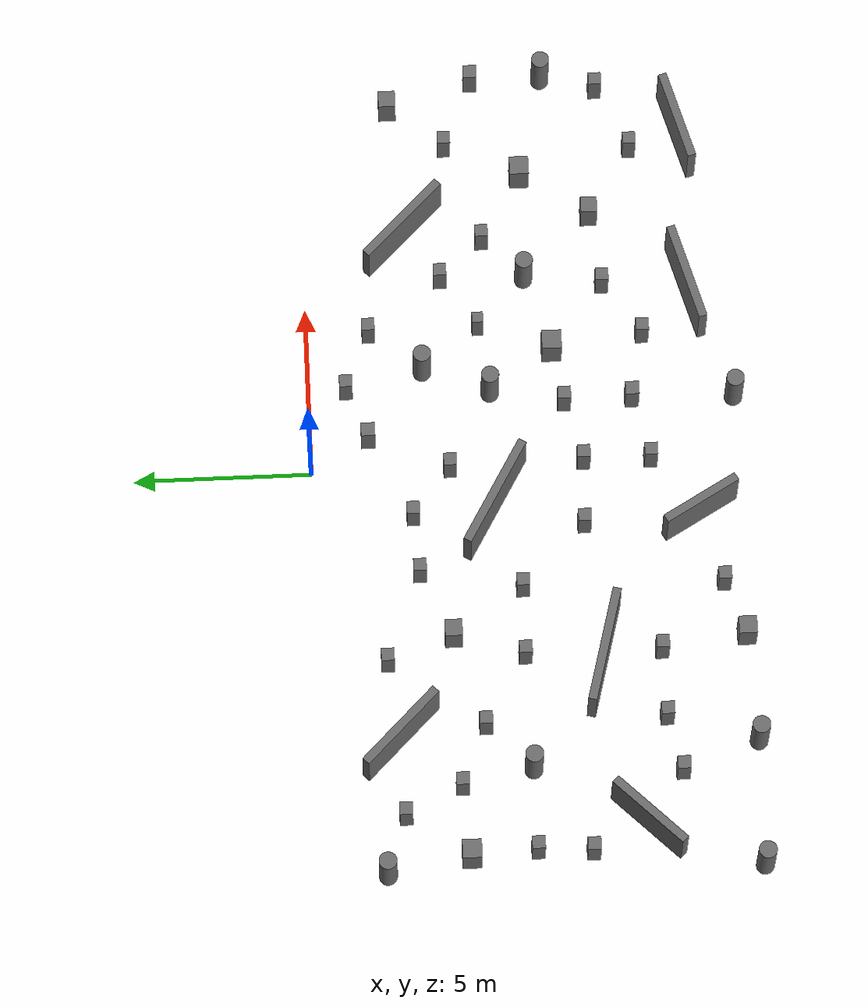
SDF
<sdf version="1.6">
 <world name="ground">
  <include><uri>model://sun</uri></include>
  <model name="ground_arena">
   <static>true</static>
   <link name="maze_wall_01">
    <pose>-8.002754 -2.164485 0.750000 0 0 2.356196</pose>
    <inertial><mass>1</mass></inertial>
    <collision name="collision">
     <geometry><box><size>2.830000 0.240000 1.500000</size></box></geometry>
    </collision>
    <visual name="visual">
     <geometry><box><size>2.830000 0.240000 1.500000</size></box></geometry>
     <material>
      <ambient>0.42 0.42 0.42 1</ambient>
      <diffuse>0.42 0.42 0.42 1</diffuse>
      <specular>0.15 0.15 0.15 1</specular>
     </material>
    </visual>
   </link>
   <link name="maze_wall_03">
    <pose>-1.253402 -5.074368 0.750000 0 0 2.617994</pose>
    <inertial><mass>1</mass></inertial>
    <collision name="collision">
     <geometry><box><size>3.340000 0.240000 1.500000</size></box></geometry>
    </collision>
    <visual name="visual">
     <geometry><box><size>3.340000 0.240000 1.500000</size></box></geometry>
     <material>
      <ambient>0.42 0.42 0.42 1</ambient>
      <diffuse>0.42 0.42 0.42 1</diffuse>
      <specular>0.15 0.15 0.15 1</specular>
     </material>
    </visual>
   </link>
   <link name="maze_wall_10">
    <pose>9.978798 -10.823324 0.750000 0 0 0.261799</pose>
    <inertial><mass>1</mass></inertial>
    <collision name="collision">
     <geometry><box><size>2.670000 0.240000 1.500000</size></box></geometry>
    </collision>
    <visual name="visual">
     <geometry><box><size>2.670000 0.240000 1.500000</size></box></geometry>
     <material>
      <ambient>0.42 0.42 0.42 1</ambient>
      <diffuse>0.42 0.42 0.42 1</diffuse>
      <specular>0.15 0.15 0.15 1</specular>
     </material>
    </visual>
   </link>
   <link name="maze_wall_11">
    <pose>-5.892469 -7.865181 0.750000 0 0 2.879794</pose>
    <inertial><mass>1</mass></inertial>
    <collision name="collision">
     <geometry><box><size>3.320000 0.240000 1.500000</size></box></geometry>
    </collision>
    <visual name="visual">
     <geometry><box><size>3.320000 0.240000 1.500000</size></box></geometry>
     <material>
      <ambient>0.42 0.42 0.42 1</ambient>
      <diffuse>0.42 0.42 0.42 1</diffuse>
      <specular>0.15 0.15 0.15 1</specular>
     </material>
    </visual>
   </link>
   <link name="maze_wall_14">
    <pose>-1.729035 -10.778752 0.750000 0 0 2.094395</pose>
    <inertial><mass>1</mass></inertial>
    <collision name="collision">
     <geometry><box><size>2.350000 0.240000 1.500000</size></box></geometry>
    </collision>
    <visual name="visual">
     <geometry><box><size>2.350000 0.240000 1.500000</size></box></geometry>
     <material>
      <ambient>0.42 0.42 0.42 1</ambient>
      <diffuse>0.42 0.42 0.42 1</diffuse>
      <specular>0.15 0.15 0.15 1</specular>
     </material>
    </visual>
   </link>
   <link name="maze_wall_15">
    <pose>7.132028 -2.846065 0.750000 0 0 2.356196</pose>
    <inertial><mass>1</mass></inertial>
    <collision name="collision">
     <geometry><box><size>3.000000 0.240000 1.500000</size></box></geometry>
    </collision>
    <visual name="visual">
     <geometry><box><size>3.000000 0.240000 1.500000</size></box></geometry>
     <material>
      <ambient>0.42 0.42 0.42 1</ambient>
      <diffuse>0.42 0.42 0.42 1</diffuse>
      <specular>0.15 0.15 0.15 1</specular>
     </material>
    </visual>
   </link>
   <link name="maze_wall_18">
    <pose>-10.715638 -8.830295 0.750000 0 0 0.785397</pose>
    <inertial><mass>1</mass></inertial>
    <collision name="collision">
     <geometry><box><size>2.560000 0.240000 1.500000</size></box></geometry>
    </collision>
    <visual name="visual">
     <geometry><box><size>2.560000 0.240000 1.500000</size></box></geometry>
     <material>
      <ambient>0.42 0.42 0.42 1</ambient>
      <diffuse>0.42 0.42 0.42 1</diffuse>
      <specular>0.15 0.15 0.15 1</specular>
     </material>
    </visual>
   </link>
   <link name="maze_wall_19">
    <pose>5.118076 -10.799826 0.750000 0 0 0.261799</pose>
    <inertial><mass>1</mass></inertial>
    <collision name="collision">
     <geometry><box><size>2.890000 0.240000 1.500000</size></box></geometry>
    </collision>
    <visual name="visual">
     <geometry><box><size>2.890000 0.240000 1.500000</size></box></geometry>
     <material>
      <ambient>0.42 0.42 0.42 1</ambient>
      <diffuse>0.42 0.42 0.42 1</diffuse>
      <specular>0.15 0.15 0.15 1</specular>
     </material>
    </visual>
   </link>
   <link name="random_cylinder_01">
    <pose>5.672616 -6.228565 0.750000 0 0 0</pose>
    <inertial><mass>1</mass></inertial>
    <collision name="collision">
     <geometry><cylinder><radius>0.250000</radius><length>1.500000</length></cylinder></geometry>
    </collision>
    <visual name="visual">
     <geometry><cylinder><radius>0.250000</radius><length>1.500000</length></cylinder></geometry>
     <material>
      <ambient>0.42 0.42 0.42 1</ambient>
      <diffuse>0.42 0.42 0.42 1</diffuse>
      <specular>0.15 0.15 0.15 1</specular>
     </material>
    </visual>
   </link>
   <link name="random_cylinder_03">
    <pose>1.813605 -11.962392 0.750000 0 0 0</pose>
    <inertial><mass>1</mass></inertial>
    <collision name="collision">
     <geometry><cylinder><radius>0.250000</radius><length>1.500000</length></cylinder></geometry>
    </collision>
    <visual name="visual">
     <geometry><cylinder><radius>0.250000</radius><length>1.500000</length></cylinder></geometry>
     <material>
      <ambient>0.42 0.42 0.42 1</ambient>
      <diffuse>0.42 0.42 0.42 1</diffuse>
      <specular>0.15 0.15 0.15 1</specular>
     </material>
    </visual>
   </link>
   <link name="random_cylinder_04">
    <pose>11.884526 -7.014955 0.750000 0 0 0</pose>
    <inertial><mass>1</mass></inertial>
    <collision name="collision">
     <geometry><cylinder><radius>0.250000</radius><length>1.500000</length></cylinder></geometry>
    </collision>
    <visual name="visual">
     <geometry><cylinder><radius>0.250000</radius><length>1.500000</length></cylinder></geometry>
     <material>
      <ambient>0.42 0.42 0.42 1</ambient>
      <diffuse>0.42 0.42 0.42 1</diffuse>
      <specular>0.15 0.15 0.15 1</specular>
     </material>
    </visual>
   </link>
   <link name="random_cylinder_05">
    <pose>2.946977 -3.227087 0.750000 0 0 0</pose>
    <inertial><mass>1</mass></inertial>
    <collision name="collision">
     <geometry><cylinder><radius>0.250000</radius><length>1.500000</length></cylinder></geometry>
    </collision>
    <visual name="visual">
     <geometry><cylinder><radius>0.250000</radius><length>1.500000</length></cylinder></geometry>
     <material>
      <ambient>0.42 0.42 0.42 1</ambient>
      <diffuse>0.42 0.42 0.42 1</diffuse>
      <specular>0.15 0.15 0.15 1</specular>
     </material>
    </visual>
   </link>
   <link name="random_cylinder_06">
    <pose>-8.990001 -5.771880 0.750000 0 0 0</pose>
    <inertial><mass>1</mass></inertial>
    <collision name="collision">
     <geometry><cylinder><radius>0.250000</radius><length>1.500000</length></cylinder></geometry>
    </collision>
    <visual name="visual">
     <geometry><cylinder><radius>0.250000</radius><length>1.500000</length></cylinder></geometry>
     <material>
      <ambient>0.42 0.42 0.42 1</ambient>
      <diffuse>0.42 0.42 0.42 1</diffuse>
      <specular>0.15 0.15 0.15 1</specular>
     </material>
    </visual>
   </link>
   <link name="random_cylinder_08">
    <pose>-8.432579 -12.010552 0.750000 0 0 0</pose>
    <inertial><mass>1</mass></inertial>
    <collision name="collision">
     <geometry><cylinder><radius>0.250000</radius><length>1.500000</length></cylinder></geometry>
    </collision>
    <visual name="visual">
     <geometry><cylinder><radius>0.250000</radius><length>1.500000</length></cylinder></geometry>
     <material>
      <ambient>0.42 0.42 0.42 1</ambient>
      <diffuse>0.42 0.42 0.42 1</diffuse>
      <specular>0.15 0.15 0.15 1</specular>
     </material>
    </visual>
   </link>
   <link name="random_cylinder_11">
    <pose>-11.857216 -1.648091 0.750000 0 0 0</pose>
    <inertial><mass>1</mass></inertial>
    <collision name="collision">
     <geometry><cylinder><radius>0.250000</radius><length>1.500000</length></cylinder></geometry>
    </collision>
    <visual name="visual">
     <geometry><cylinder><radius>0.250000</radius><length>1.500000</length></cylinder></geometry>
     <material>
      <ambient>0.42 0.42 0.42 1</ambient>
      <diffuse>0.42 0.42 0.42 1</diffuse>
      <specular>0.15 0.15 0.15 1</specular>
     </material>
    </visual>
   </link>
   <link name="random_cylinder_12">
    <pose>-12.005769 -11.943075 0.750000 0 0 0</pose>
    <inertial><mass>1</mass></inertial>
    <collision name="collision">
     <geometry><cylinder><radius>0.250000</radius><length>1.500000</length></cylinder></geometry>
    </collision>
    <visual name="visual">
     <geometry><cylinder><radius>0.250000</radius><length>1.500000</length></cylinder></geometry>
     <material>
      <ambient>0.42 0.42 0.42 1</ambient>
      <diffuse>0.42 0.42 0.42 1</diffuse>
      <specular>0.15 0.15 0.15 1</specular>
     </material>
    </visual>
   </link>
   <link name="random_cylinder_15">
    <pose>2.221076 -5.106159 0.750000 0 0 0</pose>
    <inertial><mass>1</mass></inertial>
    <collision name="collision">
     <geometry><cylinder><radius>0.250000</radius><length>1.500000</length></cylinder></geometry>
    </collision>
    <visual name="visual">
     <geometry><cylinder><radius>0.250000</radius><length>1.500000</length></cylinder></geometry>
     <material>
      <ambient>0.42 0.42 0.42 1</ambient>
      <diffuse>0.42 0.42 0.42 1</diffuse>
      <specular>0.15 0.15 0.15 1</specular>
     </material>
    </visual>
   </link>
   <link name="random_platform_01">
    <pose>0.925304 -1.620997 0.500000 0 0 0.000000</pose>
    <inertial><mass>1</mass></inertial>
    <collision name="collision">
     <geometry><box><size>0.390000 0.390000 1.000000</size></box></geometry>
    </collision>
    <visual name="visual">
     <geometry><box><size>0.390000 0.390000 1.000000</size></box></geometry>
     <material>
      <ambient>0.42 0.42 0.42 1</ambient>
      <diffuse>0.42 0.42 0.42 1</diffuse>
      <specular>0.15 0.15 0.15 1</specular>
     </material>
    </visual>
   </link>
   <link name="random_platform_03">
    <pose>-5.343664 -11.866216 0.500000 0 0 0.000000</pose>
    <inertial><mass>1</mass></inertial>
    <collision name="collision">
     <geometry><box><size>0.500000 0.500000 1.000000</size></box></geometry>
    </collision>
    <visual name="visual">
     <geometry><box><size>0.500000 0.500000 1.000000</size></box></geometry>
     <material>
      <ambient>0.42 0.42 0.42 1</ambient>
      <diffuse>0.42 0.42 0.42 1</diffuse>
      <specular>0.15 0.15 0.15 1</specular>
     </material>
    </visual>
   </link>
   <link name="random_platform_05">
    <pose>4.186415 -4.846389 0.500000 0 0 0.000000</pose>
    <inertial><mass>1</mass></inertial>
    <collision name="collision">
     <geometry><box><size>0.310000 0.310000 1.000000</size></box></geometry>
    </collision>
    <visual name="visual">
     <geometry><box><size>0.310000 0.310000 1.000000</size></box></geometry>
     <material>
      <ambient>0.42 0.42 0.42 1</ambient>
      <diffuse>0.42 0.42 0.42 1</diffuse>
      <specular>0.15 0.15 0.15 1</specular>
     </material>
    </visual>
   </link>
   <link name="random_platform_06">
    <pose>11.076780 -2.575653 0.500000 0 0 0.000000</pose>
    <inertial><mass>1</mass></inertial>
    <collision name="collision">
     <geometry><box><size>0.480000 0.480000 1.000000</size></box></geometry>
    </collision>
    <visual name="visual">
     <geometry><box><size>0.480000 0.480000 1.000000</size></box></geometry>
     <material>
      <ambient>0.42 0.42 0.42 1</ambient>
      <diffuse>0.42 0.42 0.42 1</diffuse>
      <specular>0.15 0.15 0.15 1</specular>
     </material>
    </visual>
   </link>
   <link name="random_platform_07">
    <pose>-5.065009 -3.742804 0.500000 0 0 0.000000</pose>
    <inertial><mass>1</mass></inertial>
    <collision name="collision">
     <geometry><box><size>0.480000 0.480000 1.000000</size></box></geometry>
    </collision>
    <visual name="visual">
     <geometry><box><size>0.480000 0.480000 1.000000</size></box></geometry>
     <material>
      <ambient>0.42 0.42 0.42 1</ambient>
      <diffuse>0.42 0.42 0.42 1</diffuse>
      <specular>0.15 0.15 0.15 1</specular>
     </material>
    </visual>
   </link>
   <link name="random_platform_09">
    <pose>1.843163 -9.084276 0.500000 0 0 0.000000</pose>
    <inertial><mass>1</mass></inertial>
    <collision name="collision">
     <geometry><box><size>0.380000 0.380000 1.000000</size></box></geometry>
    </collision>
    <visual name="visual">
     <geometry><box><size>0.380000 0.380000 1.000000</size></box></geometry>
     <material>
      <ambient>0.42 0.42 0.42 1</ambient>
      <diffuse>0.42 0.42 0.42 1</diffuse>
      <specular>0.15 0.15 0.15 1</specular>
     </material>
    </visual>
   </link>
   <link name="random_platform_12">
    <pose>3.418501 -6.898940 0.500000 0 0 0.000000</pose>
    <inertial><mass>1</mass></inertial>
    <collision name="collision">
     <geometry><box><size>0.550000 0.550000 1.000000</size></box></geometry>
    </collision>
    <visual name="visual">
     <geometry><box><size>0.550000 0.550000 1.000000</size></box></geometry>
     <material>
      <ambient>0.42 0.42 0.42 1</ambient>
      <diffuse>0.42 0.42 0.42 1</diffuse>
      <specular>0.15 0.15 0.15 1</specular>
     </material>
    </visual>
   </link>
   <link name="random_platform_13">
    <pose>-11.458504 -3.948779 0.500000 0 0 0.000000</pose>
    <inertial><mass>1</mass></inertial>
    <collision name="collision">
     <geometry><box><size>0.530000 0.530000 1.000000</size></box></geometry>
    </collision>
    <visual name="visual">
     <geometry><box><size>0.530000 0.530000 1.000000</size></box></geometry>
     <material>
      <ambient>0.42 0.42 0.42 1</ambient>
      <diffuse>0.42 0.42 0.42 1</diffuse>
      <specular>0.15 0.15 0.15 1</specular>
     </material>
    </visual>
   </link>
   <link name="random_platform_14">
    <pose>11.840921 -4.993380 0.500000 0 0 0.000000</pose>
    <inertial><mass>1</mass></inertial>
    <collision name="collision">
     <geometry><box><size>0.380000 0.380000 1.000000</size></box></geometry>
    </collision>
    <visual name="visual">
     <geometry><box><size>0.380000 0.380000 1.000000</size></box></geometry>
     <material>
      <ambient>0.42 0.42 0.42 1</ambient>
      <diffuse>0.42 0.42 0.42 1</diffuse>
      <specular>0.15 0.15 0.15 1</specular>
     </material>
    </visual>
   </link>
   <link name="random_platform_16">
    <pose>7.517379 -8.175658 0.500000 0 0 0.000000</pose>
    <inertial><mass>1</mass></inertial>
    <collision name="collision">
     <geometry><box><size>0.460000 0.460000 1.000000</size></box></geometry>
    </collision>
    <visual name="visual">
     <geometry><box><size>0.460000 0.460000 1.000000</size></box></geometry>
     <material>
      <ambient>0.42 0.42 0.42 1</ambient>
      <diffuse>0.42 0.42 0.42 1</diffuse>
      <specular>0.15 0.15 0.15 1</specular>
     </material>
    </visual>
   </link>
   <link name="random_platform_18">
    <pose>8.827785 -6.254351 0.500000 0 0 0.000000</pose>
    <inertial><mass>1</mass></inertial>
    <collision name="collision">
     <geometry><box><size>0.540000 0.540000 1.000000</size></box></geometry>
    </collision>
    <visual name="visual">
     <geometry><box><size>0.540000 0.540000 1.000000</size></box></geometry>
     <material>
      <ambient>0.42 0.42 0.42 1</ambient>
      <diffuse>0.42 0.42 0.42 1</diffuse>
      <specular>0.15 0.15 0.15 1</specular>
     </material>
    </visual>
   </link>
   <link name="added_platform_002">
    <pose>-0.010046 -9.507359 0.5 0 0 0</pose>
    <inertial><mass>1</mass></inertial>
    <collision name="collision">
     <geometry><box><size>0.360000 0.360000 1.000000</size></box></geometry>
    </collision>
    <visual name="visual">
     <geometry><box><size>0.360000 0.360000 1.000000</size></box></geometry>
     <material>
      <ambient>0.42 0.42 0.42 1</ambient>
      <diffuse>0.42 0.42 0.42 1</diffuse>
      <specular>0.15 0.15 0.15 1</specular>
     </material>
    </visual>
   </link>
   <link name="added_platform_003">
    <pose>3.777483 -9.476543 0.5 0 0 0</pose>
    <inertial><mass>1</mass></inertial>
    <collision name="collision">
     <geometry><box><size>0.360000 0.360000 1.000000</size></box></geometry>
    </collision>
    <visual name="visual">
     <geometry><box><size>0.360000 0.360000 1.000000</size></box></geometry>
     <material>
      <ambient>0.42 0.42 0.42 1</ambient>
      <diffuse>0.42 0.42 0.42 1</diffuse>
      <specular>0.15 0.15 0.15 1</specular>
     </material>
    </visual>
   </link>
   <link name="added_platform_007">
    <pose>-0.068759 -3.876974 0.5 0 0 0</pose>
    <inertial><mass>1</mass></inertial>
    <collision name="collision">
     <geometry><box><size>0.360000 0.360000 1.000000</size></box></geometry>
    </collision>
    <visual name="visual">
     <geometry><box><size>0.360000 0.360000 1.000000</size></box></geometry>
     <material>
      <ambient>0.42 0.42 0.42 1</ambient>
      <diffuse>0.42 0.42 0.42 1</diffuse>
      <specular>0.15 0.15 0.15 1</specular>
     </material>
    </visual>
   </link>
   <link name="added_platform_010">
    <pose>5.701436 -3.848855 0.5 0 0 0</pose>
    <inertial><mass>1</mass></inertial>
    <collision name="collision">
     <geometry><box><size>0.360000 0.360000 1.000000</size></box></geometry>
    </collision>
    <visual name="visual">
     <geometry><box><size>0.360000 0.360000 1.000000</size></box></geometry>
     <material>
      <ambient>0.42 0.42 0.42 1</ambient>
      <diffuse>0.42 0.42 0.42 1</diffuse>
      <specular>0.15 0.15 0.15 1</specular>
     </material>
    </visual>
   </link>
   <link name="added_platform_011">
    <pose>9.549966 -9.435503 0.5 0 0 0</pose>
    <inertial><mass>1</mass></inertial>
    <collision name="collision">
     <geometry><box><size>0.360000 0.360000 1.000000</size></box></geometry>
    </collision>
    <visual name="visual">
     <geometry><box><size>0.360000 0.360000 1.000000</size></box></geometry>
     <material>
      <ambient>0.42 0.42 0.42 1</ambient>
      <diffuse>0.42 0.42 0.42 1</diffuse>
      <specular>0.15 0.15 0.15 1</specular>
     </material>
    </visual>
   </link>
   <link name="added_platform_013">
    <pose>-9.438943 -3.795574 0.5 0 0 0</pose>
    <inertial><mass>1</mass></inertial>
    <collision name="collision">
     <geometry><box><size>0.360000 0.360000 1.000000</size></box></geometry>
    </collision>
    <visual name="visual">
     <geometry><box><size>0.360000 0.360000 1.000000</size></box></geometry>
     <material>
      <ambient>0.42 0.42 0.42 1</ambient>
      <diffuse>0.42 0.42 0.42 1</diffuse>
      <specular>0.15 0.15 0.15 1</specular>
     </material>
    </visual>
   </link>
   <link name="added_platform_014">
    <pose>-3.782510 -11.337103 0.5 0 0 0</pose>
    <inertial><mass>1</mass></inertial>
    <collision name="collision">
     <geometry><box><size>0.360000 0.360000 1.000000</size></box></geometry>
    </collision>
    <visual name="visual">
     <geometry><box><size>0.360000 0.360000 1.000000</size></box></geometry>
     <material>
      <ambient>0.42 0.42 0.42 1</ambient>
      <diffuse>0.42 0.42 0.42 1</diffuse>
      <specular>0.15 0.15 0.15 1</specular>
     </material>
    </visual>
   </link>
   <link name="added_platform_015">
    <pose>-5.713869 -9.494181 0.5 0 0 0</pose>
    <inertial><mass>1</mass></inertial>
    <collision name="collision">
     <geometry><box><size>0.360000 0.360000 1.000000</size></box></geometry>
    </collision>
    <visual name="visual">
     <geometry><box><size>0.360000 0.360000 1.000000</size></box></geometry>
     <material>
      <ambient>0.42 0.42 0.42 1</ambient>
      <diffuse>0.42 0.42 0.42 1</diffuse>
      <specular>0.15 0.15 0.15 1</specular>
     </material>
    </visual>
   </link>
   <link name="added_platform_017">
    <pose>-5.767181 -1.893864 0.5 0 0 0</pose>
    <inertial><mass>1</mass></inertial>
    <collision name="collision">
     <geometry><box><size>0.360000 0.360000 1.000000</size></box></geometry>
    </collision>
    <visual name="visual">
     <geometry><box><size>0.360000 0.360000 1.000000</size></box></geometry>
     <material>
      <ambient>0.42 0.42 0.42 1</ambient>
      <diffuse>0.42 0.42 0.42 1</diffuse>
      <specular>0.15 0.15 0.15 1</specular>
     </material>
    </visual>
   </link>
   <link name="added_platform_018">
    <pose>-1.897647 -7.544951 0.5 0 0 0</pose>
    <inertial><mass>1</mass></inertial>
    <collision name="collision">
     <geometry><box><size>0.360000 0.360000 1.000000</size></box></geometry>
    </collision>
    <visual name="visual">
     <geometry><box><size>0.360000 0.360000 1.000000</size></box></geometry>
     <material>
      <ambient>0.42 0.42 0.42 1</ambient>
      <diffuse>0.42 0.42 0.42 1</diffuse>
      <specular>0.15 0.15 0.15 1</specular>
     </material>
    </visual>
   </link>
   <link name="added_platform_019">
    <pose>0.007974 -7.622730 0.5 0 0 0</pose>
    <inertial><mass>1</mass></inertial>
    <collision name="collision">
     <geometry><box><size>0.360000 0.360000 1.000000</size></box></geometry>
    </collision>
    <visual name="visual">
     <geometry><box><size>0.360000 0.360000 1.000000</size></box></geometry>
     <material>
      <ambient>0.42 0.42 0.42 1</ambient>
      <diffuse>0.42 0.42 0.42 1</diffuse>
      <specular>0.15 0.15 0.15 1</specular>
     </material>
    </visual>
   </link>
   <link name="added_platform_020">
    <pose>-11.356662 -5.766861 0.5 0 0 0</pose>
    <inertial><mass>1</mass></inertial>
    <collision name="collision">
     <geometry><box><size>0.360000 0.360000 1.000000</size></box></geometry>
    </collision>
    <visual name="visual">
     <geometry><box><size>0.360000 0.360000 1.000000</size></box></geometry>
     <material>
      <ambient>0.42 0.42 0.42 1</ambient>
      <diffuse>0.42 0.42 0.42 1</diffuse>
      <specular>0.15 0.15 0.15 1</specular>
     </material>
    </visual>
   </link>
   <link name="added_platform_021">
    <pose>-5.704709 -5.703780 0.5 0 0 0</pose>
    <inertial><mass>1</mass></inertial>
    <collision name="collision">
     <geometry><box><size>0.360000 0.360000 1.000000</size></box></geometry>
    </collision>
    <visual name="visual">
     <geometry><box><size>0.360000 0.360000 1.000000</size></box></geometry>
     <material>
      <ambient>0.42 0.42 0.42 1</ambient>
      <diffuse>0.42 0.42 0.42 1</diffuse>
      <specular>0.15 0.15 0.15 1</specular>
     </material>
    </visual>
   </link>
   <link name="added_platform_022">
    <pose>-7.655881 -9.514897 0.5 0 0 0</pose>
    <inertial><mass>1</mass></inertial>
    <collision name="collision">
     <geometry><box><size>0.360000 0.360000 1.000000</size></box></geometry>
    </collision>
    <visual name="visual">
     <geometry><box><size>0.360000 0.360000 1.000000</size></box></geometry>
     <material>
      <ambient>0.42 0.42 0.42 1</ambient>
      <diffuse>0.42 0.42 0.42 1</diffuse>
      <specular>0.15 0.15 0.15 1</specular>
     </material>
    </visual>
   </link>
   <link name="added_platform_023">
    <pose>-3.722285 -5.737114 0.5 0 0 0</pose>
    <inertial><mass>1</mass></inertial>
    <collision name="collision">
     <geometry><box><size>0.360000 0.360000 1.000000</size></box></geometry>
    </collision>
    <visual name="visual">
     <geometry><box><size>0.360000 0.360000 1.000000</size></box></geometry>
     <material>
      <ambient>0.42 0.42 0.42 1</ambient>
      <diffuse>0.42 0.42 0.42 1</diffuse>
      <specular>0.15 0.15 0.15 1</specular>
     </material>
    </visual>
   </link>
   <link name="added_platform_028">
    <pose>11.457264 -8.562358 0.5 0 0 0</pose>
    <inertial><mass>1</mass></inertial>
    <collision name="collision">
     <geometry><box><size>0.360000 0.360000 1.000000</size></box></geometry>
    </collision>
    <visual name="visual">
     <geometry><box><size>0.360000 0.360000 1.000000</size></box></geometry>
     <material>
      <ambient>0.42 0.42 0.42 1</ambient>
      <diffuse>0.42 0.42 0.42 1</diffuse>
      <specular>0.15 0.15 0.15 1</specular>
     </material>
    </visual>
   </link>
   <link name="added_platform_030">
    <pose>-10.230944 -2.207149 0.5 0 0 0</pose>
    <inertial><mass>1</mass></inertial>
    <collision name="collision">
     <geometry><box><size>0.360000 0.360000 1.000000</size></box></geometry>
    </collision>
    <visual name="visual">
     <geometry><box><size>0.360000 0.360000 1.000000</size></box></geometry>
     <material>
      <ambient>0.42 0.42 0.42 1</ambient>
      <diffuse>0.42 0.42 0.42 1</diffuse>
      <specular>0.15 0.15 0.15 1</specular>
     </material>
    </visual>
   </link>
   <link name="added_platform_031">
    <pose>9.802545 -4.147190 0.5 0 0 0</pose>
    <inertial><mass>1</mass></inertial>
    <collision name="collision">
     <geometry><box><size>0.360000 0.360000 1.000000</size></box></geometry>
    </collision>
    <visual name="visual">
     <geometry><box><size>0.360000 0.360000 1.000000</size></box></geometry>
     <material>
      <ambient>0.42 0.42 0.42 1</ambient>
      <diffuse>0.42 0.42 0.42 1</diffuse>
      <specular>0.15 0.15 0.15 1</specular>
     </material>
    </visual>
   </link>
   <link name="added_platform_032">
    <pose>-3.170371 -2.898163 0.5 0 0 0</pose>
    <inertial><mass>1</mass></inertial>
    <collision name="collision">
     <geometry><box><size>0.360000 0.360000 1.000000</size></box></geometry>
    </collision>
    <visual name="visual">
     <geometry><box><size>0.360000 0.360000 1.000000</size></box></geometry>
     <material>
      <ambient>0.42 0.42 0.42 1</ambient>
      <diffuse>0.42 0.42 0.42 1</diffuse>
      <specular>0.15 0.15 0.15 1</specular>
     </material>
    </visual>
   </link>
   <link name="added_platform_035">
    <pose>-11.455032 -7.280110 0.5 0 0 0</pose>
    <inertial><mass>1</mass></inertial>
    <collision name="collision">
     <geometry><box><size>0.360000 0.360000 1.000000</size></box></geometry>
    </collision>
    <visual name="visual">
     <geometry><box><size>0.360000 0.360000 1.000000</size></box></geometry>
     <material>
      <ambient>0.42 0.42 0.42 1</ambient>
      <diffuse>0.42 0.42 0.42 1</diffuse>
      <specular>0.15 0.15 0.15 1</specular>
     </material>
    </visual>
   </link>
   <link name="added_platform_037">
    <pose>1.793533 -7.173460 0.5 0 0 0</pose>
    <inertial><mass>1</mass></inertial>
    <collision name="collision">
     <geometry><box><size>0.360000 0.360000 1.000000</size></box></geometry>
    </collision>
    <visual name="visual">
     <geometry><box><size>0.360000 0.360000 1.000000</size></box></geometry>
     <material>
      <ambient>0.42 0.42 0.42 1</ambient>
      <diffuse>0.42 0.42 0.42 1</diffuse>
      <specular>0.15 0.15 0.15 1</specular>
     </material>
    </visual>
   </link>
   <link name="added_platform_039">
    <pose>6.851805 -5.081628 0.5 0 0 0</pose>
    <inertial><mass>1</mass></inertial>
    <collision name="collision">
     <geometry><box><size>0.360000 0.360000 1.000000</size></box></geometry>
    </collision>
    <visual name="visual">
     <geometry><box><size>0.360000 0.360000 1.000000</size></box></geometry>
     <material>
      <ambient>0.42 0.42 0.42 1</ambient>
      <diffuse>0.42 0.42 0.42 1</diffuse>
      <specular>0.15 0.15 0.15 1</specular>
     </material>
    </visual>
   </link>
   <link name="added_platform_043">
    <pose>-1.467842 -2.786363 0.5 0 0 0</pose>
    <inertial><mass>1</mass></inertial>
    <collision name="collision">
     <geometry><box><size>0.360000 0.360000 1.000000</size></box></geometry>
    </collision>
    <visual name="visual">
     <geometry><box><size>0.360000 0.360000 1.000000</size></box></geometry>
     <material>
      <ambient>0.42 0.42 0.42 1</ambient>
      <diffuse>0.42 0.42 0.42 1</diffuse>
      <specular>0.15 0.15 0.15 1</specular>
     </material>
    </visual>
   </link>
   <link name="added_platform_046">
    <pose>-9.249609 -9.863560 0.5 0 0 0</pose>
    <inertial><mass>1</mass></inertial>
    <collision name="collision">
     <geometry><box><size>0.360000 0.360000 1.000000</size></box></geometry>
    </collision>
    <visual name="visual">
     <geometry><box><size>0.360000 0.360000 1.000000</size></box></geometry>
     <material>
      <ambient>0.42 0.42 0.42 1</ambient>
      <diffuse>0.42 0.42 0.42 1</diffuse>
      <specular>0.15 0.15 0.15 1</specular>
     </material>
    </visual>
   </link>
   <link name="added_platform_047">
    <pose>5.357969 -8.426340 0.5 0 0 0</pose>
    <inertial><mass>1</mass></inertial>
    <collision name="collision">
     <geometry><box><size>0.360000 0.360000 1.000000</size></box></geometry>
    </collision>
    <visual name="visual">
     <geometry><box><size>0.360000 0.360000 1.000000</size></box></geometry>
     <material>
      <ambient>0.42 0.42 0.42 1</ambient>
      <diffuse>0.42 0.42 0.42 1</diffuse>
      <specular>0.15 0.15 0.15 1</specular>
     </material>
    </visual>
   </link>
   <link name="added_platform_049">
    <pose>4.114645 -1.752405 0.5 0 0 0</pose>
    <inertial><mass>1</mass></inertial>
    <collision name="collision">
     <geometry><box><size>0.360000 0.360000 1.000000</size></box></geometry>
    </collision>
    <visual name="visual">
     <geometry><box><size>0.360000 0.360000 1.000000</size></box></geometry>
     <material>
      <ambient>0.42 0.42 0.42 1</ambient>
      <diffuse>0.42 0.42 0.42 1</diffuse>
      <specular>0.15 0.15 0.15 1</specular>
     </material>
    </visual>
   </link>
   <link name="added_platform_050">
    <pose>-7.713516 -4.514451 0.5 0 0 0</pose>
    <inertial><mass>1</mass></inertial>
    <collision name="collision">
     <geometry><box><size>0.360000 0.360000 1.000000</size></box></geometry>
    </collision>
    <visual name="visual">
     <geometry><box><size>0.360000 0.360000 1.000000</size></box></geometry>
     <material>
      <ambient>0.42 0.42 0.42 1</ambient>
      <diffuse>0.42 0.42 0.42 1</diffuse>
      <specular>0.15 0.15 0.15 1</specular>
     </material>
    </visual>
   </link>
   <link name="added_platform_052">
    <pose>2.416557 -1.055781 0.5 0 0 0</pose>
    <inertial><mass>1</mass></inertial>
    <collision name="collision">
     <geometry><box><size>0.360000 0.360000 1.000000</size></box></geometry>
    </collision>
    <visual name="visual">
     <geometry><box><size>0.360000 0.360000 1.000000</size></box></geometry>
     <material>
      <ambient>0.42 0.42 0.42 1</ambient>
      <diffuse>0.42 0.42 0.42 1</diffuse>
      <specular>0.15 0.15 0.15 1</specular>
     </material>
    </visual>
   </link>
  </model>
 </world>
</sdf>
